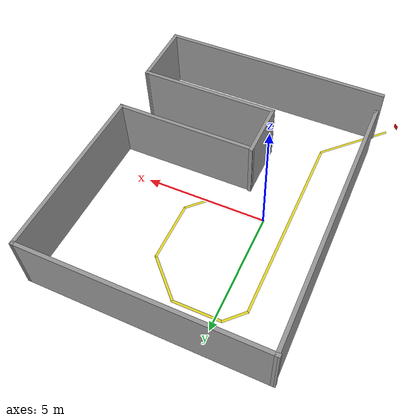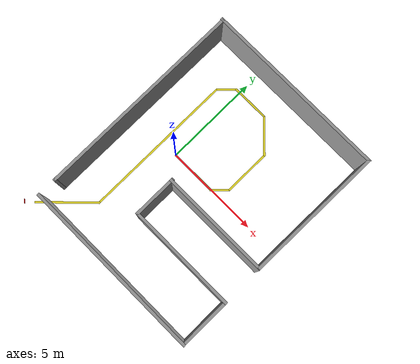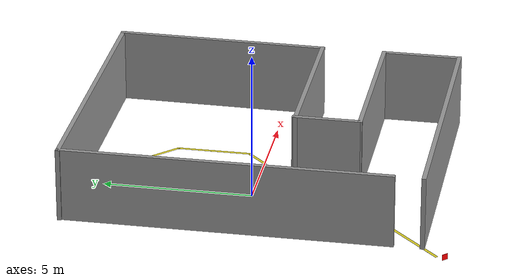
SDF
<sdf version="1.6">
 <world name="default">
  <light name="sun" type="directional">
   <pose>0 0 10 0 -0 0</pose>
   <diffuse>0.8 0.8 0.8 1</diffuse>
   <specular>0.1 0.1 0.1 1</specular>
   <attenuation>
    <range>1000</range>
    <constant>0.9</constant>
    <linear>0.01</linear>
    <quadratic>0.001</quadratic>
   </attenuation>
   <direction>-0.5 0.5 -1</direction>
  </light>
  <gravity>0 0 -9.8</gravity>
  <magnetic_field>6e-06 2.3e-05 -4.2e-05</magnetic_field>
  <atmosphere type="adiabatic"/>
  <physics name="default_physics" default="0" type="ode">
   <max_step_size>0.001</max_step_size>
   <real_time_factor>1</real_time_factor>
   <real_time_update_rate>1000</real_time_update_rate>
  </physics>
  <scene><ambient>0.4 0.4 0.4 1</ambient><background>0.7 0.7 0.7 1</background><shadows>1</shadows></scene>
  <spherical_coordinates>
   <surface_model>EARTH_WGS84</surface_model>
   <latitude_deg>0</latitude_deg>
   <longitude_deg>0</longitude_deg>
   <elevation>0</elevation>
   <heading_deg>0</heading_deg>
  </spherical_coordinates>
  <model name="yellow line_0">
   <static>1</static>
   <link name="link_ground">
    <collision name="collision">
     <geometry><plane><normal>0 0 1</normal><size>0.1 2.5</size></plane></geometry>
     <surface><friction><ode><mu>100</mu><mu2>50</mu2></ode></friction></surface>
    </collision>
    <visual name="visual_ground">
     <cast_shadows>0</cast_shadows>
     <geometry><plane><normal>0 0 1</normal><size>0.1 2.5</size></plane></geometry>
     <material>
      <script><uri>file://media/materials/scripts/gazebo.material</uri><name>Gazebo/Yellow</name></script>
     </material>
    </visual>
   </link>
   <pose>1.21409 0 0 0 -0 1.57</pose>
  </model>
  <model name="yellow line_1">
   <static>1</static>
   <link name="link_ground">
    <collision name="collision">
     <geometry><plane><normal>0 0 1</normal><size>0.1 1</size></plane></geometry>
     <surface><friction><ode><mu>100</mu><mu2>50</mu2></ode></friction></surface>
    </collision>
    <visual name="visual_ground">
     <cast_shadows>0</cast_shadows>
     <geometry><plane><normal>0 0 1</normal><size>0.1 1</size></plane></geometry>
     <material>
      <script><uri>file://media/materials/scripts/gazebo.material</uri><name>Gazebo/Yellow</name></script>
     </material>
    </visual>
   </link>
   <pose>2.75 0.32 0 0 0 -0.784999</pose>
  </model>
  <model name="yellow line_2">
   <static>1</static>
   <link name="link_ground">
    <collision name="collision">
     <geometry><plane><normal>0 0 1</normal><size>0.1 2.5</size></plane></geometry>
     <surface><friction><ode><mu>100</mu><mu2>50</mu2></ode></friction></surface>
    </collision>
    <visual name="visual_ground">
     <cast_shadows>0</cast_shadows>
     <geometry><plane><normal>0 0 1</normal><size>0.1 2.5</size></plane></geometry>
     <material>
      <script><uri>file://media/materials/scripts/gazebo.material</uri><name>Gazebo/Yellow</name></script>
     </material>
    </visual>
   </link>
   <pose>3.08297 1.87937 0 0 -0 0</pose>
  </model>
  <model name="yellow line_3">
   <static>1</static>
   <link name="link_ground">
    <collision name="collision">
     <geometry><plane><normal>0 0 1</normal><size>0.1 2</size></plane></geometry>
     <surface><friction><ode><mu>100</mu><mu2>50</mu2></ode></friction></surface>
    </collision>
    <visual name="visual_ground">
     <cast_shadows>0</cast_shadows>
     <geometry><plane><normal>0 0 1</normal><size>0.1 2</size></plane></geometry>
     <material>
      <script><uri>file://media/materials/scripts/gazebo.material</uri><name>Gazebo/Yellow</name></script>
     </material>
    </visual>
   </link>
   <pose>2.4 3.78 0 0 -0 0.785</pose>
  </model>
  <model name="yellow line_4">
   <static>1</static>
   <link name="link_ground">
    <collision name="collision">
     <geometry><plane><normal>0 0 1</normal><size>0.1 2</size></plane></geometry>
     <surface><friction><ode><mu>100</mu><mu2>50</mu2></ode></friction></surface>
    </collision>
    <visual name="visual_ground">
     <cast_shadows>0</cast_shadows>
     <geometry><plane><normal>0 0 1</normal><size>0.1 2</size></plane></geometry>
     <material>
      <script><uri>file://media/materials/scripts/gazebo.material</uri><name>Gazebo/Yellow</name></script>
     </material>
    </visual>
   </link>
   <pose>0.72 4.5 0 0 -0 1.57</pose>
  </model>
  <model name="yellow line_5">
   <static>1</static>
   <link name="link_ground">
    <collision name="collision">
     <geometry><plane><normal>0 0 1</normal><size>0.1 1</size></plane></geometry>
     <surface><friction><ode><mu>100</mu><mu2>50</mu2></ode></friction></surface>
    </collision>
    <visual name="visual_ground">
     <cast_shadows>0</cast_shadows>
     <geometry><plane><normal>0 0 1</normal><size>0.1 1</size></plane></geometry>
     <material>
      <script><uri>file://media/materials/scripts/gazebo.material</uri><name>Gazebo/Yellow</name></script>
     </material>
    </visual>
   </link>
   <pose>-0.6 4.16 0 0 0 -0.785</pose>
  </model>
  <model name="yellow line_7">
   <static>1</static>
   <link name="link_ground">
    <collision name="collision">
     <geometry><plane><normal>0 0 1</normal><size>0.1 8.2</size></plane></geometry>
     <surface><friction><ode><mu>100</mu><mu2>50</mu2></ode></friction></surface>
    </collision>
    <visual name="visual_ground">
     <cast_shadows>0</cast_shadows>
     <geometry><plane><normal>0 0 1</normal><size>0.1 8.2</size></plane></geometry>
     <material>
      <script><uri>file://media/materials/scripts/gazebo.material</uri><name>Gazebo/Yellow</name></script>
     </material>
    </visual>
   </link>
   <pose>-0.94783 -0.25 0 0 -0 0</pose>
  </model>
  <model name="rooms_0">
   <pose>2.03304 -0.08026 0 0 -0 0</pose>
   <link name="Wall_1">
    <collision name="Wall_1_Collision">
     <geometry><box><size>0.15 0.15 2.5</size></box></geometry>
     <pose>0 0 1.25 0 -0 0</pose>
    </collision>
    <visual name="Wall_1_Visual">
     <pose>0 0 1.25 0 -0 0</pose>
     <geometry><box><size>0.15 0.15 2.5</size></box></geometry>
     <material>
      <script><uri>file://media/materials/scripts/gazebo.material</uri><name>Gazebo/Grey</name></script>
      <ambient>1 1 1 1</ambient>
     </material>
    </visual>
    <pose>4.75175 5.87683 0 0 -0 0</pose>
   </link>
   <link name="Wall_10">
    <collision name="Wall_10_Collision">
     <geometry><box><size>0.15 0.15 2.5</size></box></geometry>
     <pose>0 0 1.25 0 -0 0</pose>
    </collision>
    <visual name="Wall_10_Visual">
     <pose>0 0 1.25 0 -0 0</pose>
     <geometry><box><size>0.15 0.15 2.5</size></box></geometry>
     <material>
      <script><uri>file://media/materials/scripts/gazebo.material</uri><name>Gazebo/Grey</name></script>
      <ambient>1 1 1 1</ambient>
     </material>
    </visual>
    <pose>-4.71225 5.92282 0 0 -0 0</pose>
   </link>
   <link name="Wall_12">
    <collision name="Wall_12_Collision">
     <geometry><box><size>9.61411 0.15 2.5</size></box></geometry>
     <pose>0 0 1.25 0 -0 0</pose>
    </collision>
    <visual name="Wall_12_Visual">
     <pose>0 0 1.25 0 -0 0</pose>
     <geometry><box><size>9.61411 0.15 2.5</size></box></geometry>
     <material>
      <script><uri>file://media/materials/scripts/gazebo.material</uri><name>Gazebo/Grey</name></script>
      <ambient>1 1 1 1</ambient>
     </material>
    </visual>
    <pose>-0.020481 5.89982 0 0 0 -0.00486</pose>
   </link>
   <link name="Wall_13">
    <collision name="Wall_13_Collision">
     <geometry><box><size>0.15 0.15 2.5</size></box></geometry>
     <pose>0 0 1.25 0 -0 0</pose>
    </collision>
    <visual name="Wall_13_Visual">
     <pose>0 0 1.25 0 -0 0</pose>
     <geometry><box><size>0.15 0.15 2.5</size></box></geometry>
     <material>
      <script><uri>file://media/materials/scripts/gazebo.material</uri><name>Gazebo/Grey</name></script>
      <ambient>1 1 1 1</ambient>
     </material>
    </visual>
    <pose>4.75175 5.87683 0 0 -0 0</pose>
   </link>
   <link name="Wall_15">
    <collision name="Wall_15_Collision">
     <geometry><box><size>5.75 0.15 2.5</size></box></geometry>
     <pose>0 0 1.25 0 -0 0</pose>
    </collision>
    <visual name="Wall_15_Visual">
     <pose>0 0 1.25 0 -0 0</pose>
     <geometry><box><size>5.75 0.15 2.5</size></box></geometry>
     <material>
      <script><uri>file://media/materials/scripts/gazebo.material</uri><name>Gazebo/Grey</name></script>
      <ambient>1 1 1 1</ambient>
     </material>
    </visual>
    <pose>1.84829 -1.17727 0 0 -0 3.14159</pose>
   </link>
   <link name="Wall_16">
    <collision name="Wall_16_Collision">
     <geometry><box><size>2.33649 0.15 2.5</size></box></geometry>
     <pose>0 0 1.25 0 -0 0</pose>
    </collision>
    <visual name="Wall_16_Visual">
     <pose>0 0 1.25 0 -0 0</pose>
     <geometry><box><size>2.33649 0.15 2.5</size></box></geometry>
     <material>
      <script><uri>file://media/materials/scripts/gazebo.material</uri><name>Gazebo/Grey</name></script>
      <ambient>1 1 1 1</ambient>
     </material>
    </visual>
    <pose>-0.951466 -2.23029 0 0 0 -1.57058</pose>
   </link>
   <link name="Wall_17">
    <collision name="Wall_17_Collision">
     <geometry><box><size>5.75 0.15 2.5</size></box></geometry>
     <pose>0 0 1.25 0 -0 0</pose>
    </collision>
    <visual name="Wall_17_Visual">
     <pose>0 0 1.25 0 -0 0</pose>
     <geometry><box><size>5.75 0.15 2.5</size></box></geometry>
     <material>
      <script><uri>file://media/materials/scripts/gazebo.material</uri><name>Gazebo/Grey</name></script>
      <ambient>1 1 1 1</ambient>
     </material>
    </visual>
    <pose>1.84878 -3.32353 0 0 -0 0</pose>
   </link>
   <link name="Wall_18">
    <collision name="Wall_18_Collision">
     <geometry><box><size>2.74964 0.15 2.5</size></box></geometry>
     <pose>0 0 1.25 0 -0 0</pose>
    </collision>
    <visual name="Wall_18_Visual">
     <pose>0 0 1.25 0 -0 0</pose>
     <geometry><box><size>2.74964 0.15 2.5</size></box></geometry>
     <material>
      <script><uri>file://media/materials/scripts/gazebo.material</uri><name>Gazebo/Grey</name></script>
      <ambient>1 1 1 1</ambient>
     </material>
    </visual>
    <pose>4.64853 -4.62335 0 0 0 -1.57098</pose>
   </link>
   <link name="Wall_19">
    <collision name="Wall_19_Collision">
     <geometry><box><size>9.5 0.15 2.5</size></box></geometry>
     <pose>0 0 1.25 0 -0 0</pose>
    </collision>
    <visual name="Wall_19_Visual">
     <pose>0 0 1.25 0 -0 0</pose>
     <geometry><box><size>9.5 0.15 2.5</size></box></geometry>
     <material>
      <script><uri>file://media/materials/scripts/gazebo.material</uri><name>Gazebo/Grey</name></script>
      <ambient>1 1 1 1</ambient>
     </material>
    </visual>
    <pose>-0.026708 -5.92317 0 0 -0 3.14159</pose>
   </link>
   <link name="Wall_22">
    <collision name="Wall_22_Collision">
     <geometry><box><size>11 0.15 2.5</size></box></geometry>
     <pose>0 0 1.25 0 -0 0</pose>
    </collision>
    <visual name="Wall_22_Visual">
     <pose>0 0 1.25 0 -0 0</pose>
     <geometry><box><size>11 0.15 2.5</size></box></geometry>
     <material>
      <script><uri>file://media/materials/scripts/gazebo.material</uri><name>Gazebo/Grey</name></script>
      <ambient>1 1 1 1</ambient>
     </material>
    </visual>
    <pose>-4.71225 0.497825 0 0 0 -1.5708</pose>
   </link>
   <link name="Wall_23">
    <collision name="Wall_23_Collision">
     <geometry><box><size>0.15 0.15 2.5</size></box></geometry>
     <pose>0 0 1.25 0 -0 0</pose>
    </collision>
    <visual name="Wall_23_Visual">
     <pose>0 0 1.25 0 -0 0</pose>
     <geometry><box><size>0.15 0.15 2.5</size></box></geometry>
     <material>
      <script><uri>file://media/materials/scripts/gazebo.material</uri><name>Gazebo/Grey</name></script>
      <ambient>1 1 1 1</ambient>
     </material>
    </visual>
    <pose>-4.71225 -4.92718 0 0 -0 0</pose>
   </link>
   <link name="Wall_3">
    <collision name="Wall_3_Collision">
     <geometry><box><size>7.16463 0.15 2.5</size></box></geometry>
     <pose>0 0 1.25 0 -0 0</pose>
    </collision>
    <visual name="Wall_3_Visual">
     <pose>0 0 1.25 0 -0 0</pose>
     <geometry><box><size>7.16463 0.15 2.5</size></box></geometry>
     <material>
      <script><uri>file://media/materials/scripts/gazebo.material</uri><name>Gazebo/Grey</name></script>
      <ambient>1 1 1 1</ambient>
     </material>
    </visual>
    <pose>4.70002 2.36989 0 0 0 -1.58554</pose>
   </link>
   <static>1</static>
  </model>
  <model name="yellow line_8">
   <static>1</static>
   <link name="link_ground">
    <collision name="collision">
     <geometry><plane><normal>0 0 1</normal><size>0.1 3.2</size></plane></geometry>
     <surface><friction><ode><mu>100</mu><mu2>50</mu2></ode></friction></surface>
    </collision>
    <visual name="visual_ground">
     <cast_shadows>0</cast_shadows>
     <geometry><plane><normal>0 0 1</normal><size>0.1 3.2</size></plane></geometry>
     <material>
      <script><uri>file://media/materials/scripts/gazebo.material</uri><name>Gazebo/Yellow</name></script>
     </material>
    </visual>
   </link>
   <pose>-2.05 -5.4 0 0 0 -0.785</pose>
  </model>
  <audio><device>default</device></audio>
  <model name="red_square">
   <link name="link_1">
    <inertial>
     <mass>0.00014957</mass>
     <inertia><ixx>4.9e-07</ixx><ixy>0</ixy><ixz>0</ixz><iyy>1.07e-06</iyy><iyz>0</iyz><izz>5.8e-07</izz></inertia>
    </inertial>
    <pose>0 0 0 0 0 -0.799222</pose>
    <gravity>0</gravity>
    <kinematic>1</kinematic>
    <visual name="visual">
     <geometry><box><size>0.215623 0.003489 0.198094</size></box></geometry>
     <material>
      <lighting>1</lighting>
      <script><uri>file://media/materials/scripts/gazebo.material</uri><name>Gazebo/Grey</name></script>
      <ambient>1 0 0 1</ambient>
      <shader type="vertex"><normal_map>__default__</normal_map></shader>
      <diffuse>0.7 0.7 0.7 1</diffuse>
      <specular>0.01 0.01 0.01 1</specular>
      <emissive>0 0 0 1</emissive>
     </material>
    </visual>
    <collision name="collision">
     <geometry><box><size>0.215623 0.003489 0.198094</size></box></geometry>
     <surface>
      <friction>
       <ode><mu>1</mu><mu2>1</mu2><fdir1>0 0 0</fdir1><slip1>0</slip1><slip2>0</slip2></ode>
       <torsional>
        <coefficient>1</coefficient>
        <patch_radius>0</patch_radius>
        <surface_radius>0</surface_radius>
        <use_patch_radius>1</use_patch_radius>
        <ode><slip>0</slip></ode>
       </torsional>
      </friction>
      <bounce><restitution_coefficient>0</restitution_coefficient><threshold>1e+06</threshold></bounce>
      <contact>
       <collide_without_contact>0</collide_without_contact>
       <collide_without_contact_bitmask>1</collide_without_contact_bitmask>
       <collide_bitmask>1</collide_bitmask>
       <ode>
        <soft_cfm>0</soft_cfm>
        <soft_erp>0.2</soft_erp>
        <kp>1e+13</kp>
        <kd>1</kd>
        <max_vel>0.01</max_vel>
        <min_depth>0</min_depth>
       </ode>
       <bullet>
        <split_impulse>1</split_impulse>
        <split_impulse_penetration_threshold>-0.01</split_impulse_penetration_threshold>
        <soft_cfm>0</soft_cfm>
        <soft_erp>0.2</soft_erp>
        <kp>1e+13</kp>
        <kd>1</kd>
       </bullet>
      </contact>
     </surface>
    </collision>
   </link>
   <static>0</static>
   <pose>-3.50579 -6.82393 0.206936 0 -0 0</pose>
  </model>
 </world>
</sdf>
